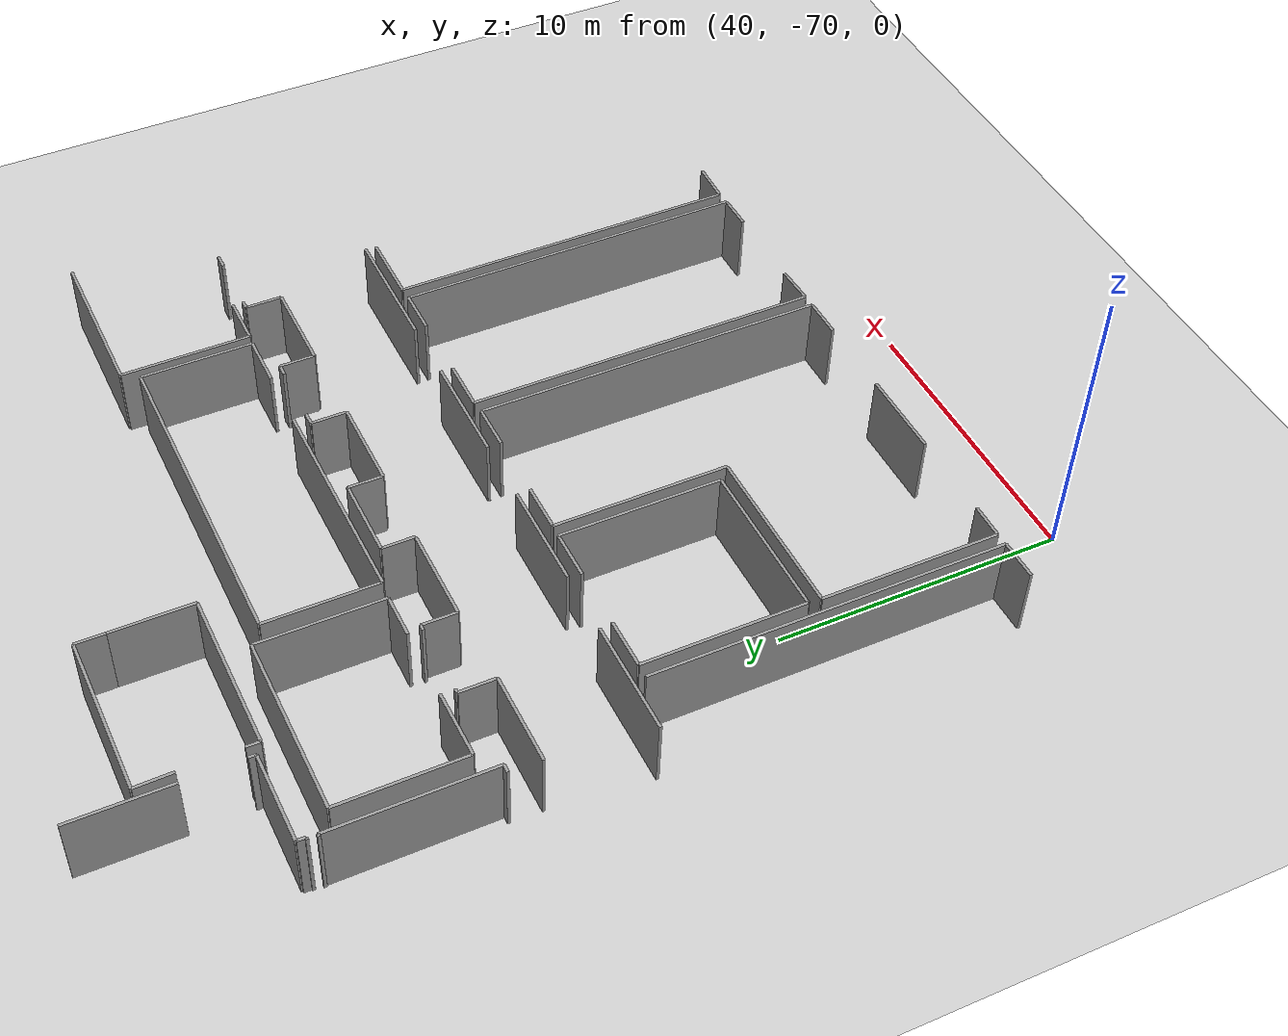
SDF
<sdf version="1.6">
 <world name="default">
  <model name="ground_plane">
   <static>1</static>
   <link name="link">
    <collision name="collision">
     <geometry><plane><normal>0 0 1</normal><size>100 100</size></plane></geometry>
     <surface><friction><ode><mu>100</mu><mu2>50</mu2></ode></friction></surface>
    </collision>
    <visual name="visual">
     <cast_shadows>0</cast_shadows>
     <geometry><plane><normal>0 0 1</normal><size>100 100</size></plane></geometry>
     <material>
      <script><uri>file://media/materials/scripts/gazebo.material</uri><name>Gazebo/Grey</name></script>
     </material>
    </visual>
   </link>
  </model>
  <model name="50036894">
   <static>1</static>
   <link name="Wall_306">
    <collision name="Wall_306_Collision">
     <geometry><box><size>3.41852164155 0.1 2.5</size></box></geometry>
     <pose>1.70926082077 0 1.25 0 0 0</pose>
    </collision>
    <visual name="Wall_306_Visual">
     <pose>1.70926082077 0 1.25 0 0 0</pose>
     <geometry><box><size>3.41852164155 0.1 2.5</size></box></geometry>
     <material>
      <script><uri>file://media/materials/scripts/gazebo.material</uri><name>Gazebo/Grey</name></script>
      <ambient>1 1 1 1</ambient>
     </material>
    </visual>
    <pose>163.628248451 -105.257245022 0 0 0 -1.57079632679</pose>
   </link>
   <link name="Wall_307">
    <collision name="Wall_307_Collision">
     <geometry><box><size>0.247766739154 0.1 2.5</size></box></geometry>
     <pose>0.123883369577 0 1.25 0 0 0</pose>
    </collision>
    <visual name="Wall_307_Visual">
     <pose>0.123883369577 0 1.25 0 0 0</pose>
     <geometry><box><size>0.247766739154 0.1 2.5</size></box></geometry>
     <material>
      <script><uri>file://media/materials/scripts/gazebo.material</uri><name>Gazebo/Grey</name></script>
      <ambient>1 1 1 1</ambient>
     </material>
    </visual>
    <pose>163.628248451 -110.709381281 0 0 0 -1.57079632679</pose>
   </link>
   <link name="Wall_308">
    <collision name="Wall_308_Collision">
     <geometry><box><size>3.16492211324 0.1 2.5</size></box></geometry>
     <pose>1.58246105662 0 1.25 0 0 0</pose>
    </collision>
    <visual name="Wall_308_Visual">
     <pose>1.58246105662 0 1.25 0 0 0</pose>
     <geometry><box><size>3.16492211324 0.1 2.5</size></box></geometry>
     <material>
      <script><uri>file://media/materials/scripts/gazebo.material</uri><name>Gazebo/Grey</name></script>
      <ambient>1 1 1 1</ambient>
     </material>
    </visual>
    <pose>163.628248451 -110.95714802 0 0 0 3.14159265359</pose>
   </link>
   <link name="Wall_309">
    <collision name="Wall_309_Collision">
     <geometry><box><size>0.298486644815 0.1 2.5</size></box></geometry>
     <pose>0.149243322407 0 1.25 0 0 0</pose>
    </collision>
    <visual name="Wall_309_Visual">
     <pose>0.149243322407 0 1.25 0 0 0</pose>
     <geometry><box><size>0.298486644815 0.1 2.5</size></box></geometry>
     <material>
      <script><uri>file://media/materials/scripts/gazebo.material</uri><name>Gazebo/Grey</name></script>
      <ambient>1 1 1 1</ambient>
     </material>
    </visual>
    <pose>160.463326338 -110.95714802 0 0 0 -1.57079632679</pose>
   </link>
   <link name="Wall_310">
    <collision name="Wall_310_Collision">
     <geometry><box><size>0.0887598349067 0.1 2.5</size></box></geometry>
     <pose>0.0443799174533 0 1.25 0 0 0</pose>
    </collision>
    <visual name="Wall_310_Visual">
     <pose>0.0443799174533 0 1.25 0 0 0</pose>
     <geometry><box><size>0.0887598349067 0.1 2.5</size></box></geometry>
     <material>
      <script><uri>file://media/materials/scripts/gazebo.material</uri><name>Gazebo/Grey</name></script>
      <ambient>1 1 1 1</ambient>
     </material>
    </visual>
    <pose>160.463326338 -111.255634665 0 0 0 3.14159265359</pose>
   </link>
   <link name="Wall_312">
    <collision name="Wall_312_Collision">
     <geometry><box><size>5.6248375378 0.1 2.5</size></box></geometry>
     <pose>2.8124187689 0 1.25 0 0 0</pose>
    </collision>
    <visual name="Wall_312_Visual">
     <pose>2.8124187689 0 1.25 0 0 0</pose>
     <geometry><box><size>5.6248375378 0.1 2.5</size></box></geometry>
     <material>
      <script><uri>file://media/materials/scripts/gazebo.material</uri><name>Gazebo/Grey</name></script>
      <ambient>1 1 1 1</ambient>
     </material>
    </visual>
    <pose>163.980751796 -107.425774588 0 0 0 0.0</pose>
   </link>
   <link name="Wall_313">
    <collision name="Wall_313_Collision">
     <geometry><box><size>0.996138947182 0.1 2.5</size></box></geometry>
     <pose>0.498069473591 0 1.25 0 0 0</pose>
    </collision>
    <visual name="Wall_313_Visual">
     <pose>0.498069473591 0 1.25 0 0 0</pose>
     <geometry><box><size>0.996138947182 0.1 2.5</size></box></geometry>
     <material>
      <script><uri>file://media/materials/scripts/gazebo.material</uri><name>Gazebo/Grey</name></script>
      <ambient>1 1 1 1</ambient>
     </material>
    </visual>
    <pose>169.605589334 -107.425774588 0 0 0 -1.57079632679</pose>
   </link>
   <link name="Wall_314">
    <collision name="Wall_314_Collision">
     <geometry><box><size>2.7989779939 0.1 2.5</size></box></geometry>
     <pose>1.39948899695 0 1.25 0 0 0</pose>
    </collision>
    <visual name="Wall_314_Visual">
     <pose>1.39948899695 0 1.25 0 0 0</pose>
     <geometry><box><size>2.7989779939 0.1 2.5</size></box></geometry>
     <material>
      <script><uri>file://media/materials/scripts/gazebo.material</uri><name>Gazebo/Grey</name></script>
      <ambient>1 1 1 1</ambient>
     </material>
    </visual>
    <pose>169.605589334 -108.421913535 0 0 0 -1.57079632679</pose>
   </link>
   <link name="Wall_315">
    <collision name="Wall_315_Collision">
     <geometry><box><size>5.59947758497 0.1 2.5</size></box></geometry>
     <pose>2.79973879249 0 1.25 0 0 0</pose>
    </collision>
    <visual name="Wall_315_Visual">
     <pose>2.79973879249 0 1.25 0 0 0</pose>
     <geometry><box><size>5.59947758497 0.1 2.5</size></box></geometry>
     <material>
      <script><uri>file://media/materials/scripts/gazebo.material</uri><name>Gazebo/Grey</name></script>
      <ambient>1 1 1 1</ambient>
     </material>
    </visual>
    <pose>169.605589334 -111.220891529 0 0 0 3.14159265359</pose>
   </link>
   <link name="Wall_316">
    <collision name="Wall_316_Collision">
     <geometry><box><size>0.466369532553 0.1 2.5</size></box></geometry>
     <pose>0.233184766276 0 1.25 0 0 0</pose>
    </collision>
    <visual name="Wall_316_Visual">
     <pose>0.233184766276 0 1.25 0 0 0</pose>
     <geometry><box><size>0.466369532553 0.1 2.5</size></box></geometry>
     <material>
      <script><uri>file://media/materials/scripts/gazebo.material</uri><name>Gazebo/Grey</name></script>
      <ambient>1 1 1 1</ambient>
     </material>
    </visual>
    <pose>164.006111749 -111.220891529 0 0 0 1.57079632679</pose>
   </link>
   <link name="Wall_317">
    <collision name="Wall_317_Collision">
     <geometry><box><size>1.28574613214 0.1 2.5</size></box></geometry>
     <pose>0.642873066068 0 1.25 0 0 0</pose>
    </collision>
    <visual name="Wall_317_Visual">
     <pose>0.642873066068 0 1.25 0 0 0</pose>
     <geometry><box><size>1.28574613214 0.1 2.5</size></box></geometry>
     <material>
      <script><uri>file://media/materials/scripts/gazebo.material</uri><name>Gazebo/Grey</name></script>
      <ambient>1 1 1 1</ambient>
     </material>
    </visual>
    <pose>164.006111749 -108.711270597 0 0 0 1.5905215251</pose>
   </link>
   <link name="Wall_323">
    <collision name="Wall_323_Collision">
     <geometry><box><size>0.0912958301898 0.1 2.5</size></box></geometry>
     <pose>0.0456479150949 0 1.25 0 0 0</pose>
    </collision>
    <visual name="Wall_323_Visual">
     <pose>0.0456479150949 0 1.25 0 0 0</pose>
     <geometry><box><size>0.0912958301898 0.1 2.5</size></box></geometry>
     <material>
      <script><uri>file://media/materials/scripts/gazebo.material</uri><name>Gazebo/Grey</name></script>
      <ambient>1 1 1 1</ambient>
     </material>
    </visual>
    <pose>160.336526574 -111.587089248 0 0 0 0.0</pose>
   </link>
   <link name="Wall_324">
    <collision name="Wall_324_Collision">
     <geometry><box><size>5.50894255337 0.1 2.5</size></box></geometry>
     <pose>2.75447127668 0 1.25 0 0 0</pose>
    </collision>
    <visual name="Wall_324_Visual">
     <pose>2.75447127668 0 1.25 0 0 0</pose>
     <geometry><box><size>5.50894255337 0.1 2.5</size></box></geometry>
     <material>
      <script><uri>file://media/materials/scripts/gazebo.material</uri><name>Gazebo/Grey</name></script>
      <ambient>1 1 1 1</ambient>
     </material>
    </visual>
    <pose>160.427822404 -111.587089248 0 0 0 -1.57079632679</pose>
   </link>
   <link name="Wall_325">
    <collision name="Wall_325_Collision">
     <geometry><box><size>0.281495476418 0.1 2.5</size></box></geometry>
     <pose>0.140747738209 0 1.25 0 0 0</pose>
    </collision>
    <visual name="Wall_325_Visual">
     <pose>0.140747738209 0 1.25 0 0 0</pose>
     <geometry><box><size>0.281495476418 0.1 2.5</size></box></geometry>
     <material>
      <script><uri>file://media/materials/scripts/gazebo.material</uri><name>Gazebo/Grey</name></script>
      <ambient>1 1 1 1</ambient>
     </material>
    </visual>
    <pose>160.427822404 -117.096031801 0 0 0 3.14159265359</pose>
   </link>
   <link name="Wall_375">
    <collision name="Wall_375_Collision">
     <geometry><box><size>3.19028206608 0.1 2.5</size></box></geometry>
     <pose>1.59514103304 0 1.25 0 0 0</pose>
    </collision>
    <visual name="Wall_375_Visual">
     <pose>1.59514103304 0 1.25 0 0 0</pose>
     <geometry><box><size>3.19028206608 0.1 2.5</size></box></geometry>
     <material>
      <script><uri>file://media/materials/scripts/gazebo.material</uri><name>Gazebo/Grey</name></script>
      <ambient>1 1 1 1</ambient>
     </material>
    </visual>
    <pose>160.100679013 -118.1720546 0 0 0 0.0</pose>
   </link>
   <link name="Wall_376">
    <collision name="Wall_376_Collision">
     <geometry><box><size>1.26165765332 0.1 2.5</size></box></geometry>
     <pose>0.630828826658 0 1.25 0 0 0</pose>
    </collision>
    <visual name="Wall_376_Visual">
     <pose>0.630828826658 0 1.25 0 0 0</pose>
     <geometry><box><size>1.26165765332 0.1 2.5</size></box></geometry>
     <material>
      <script><uri>file://media/materials/scripts/gazebo.material</uri><name>Gazebo/Grey</name></script>
      <ambient>1 1 1 1</ambient>
     </material>
    </visual>
    <pose>163.290961079 -118.1720546 0 0 0 1.57079632679</pose>
   </link>
   <link name="Wall_377">
    <collision name="Wall_377_Collision">
     <geometry><box><size>0.144551731134 0.1 2.5</size></box></geometry>
     <pose>0.0722758655669 0 1.25 0 0 0</pose>
    </collision>
    <visual name="Wall_377_Visual">
     <pose>0.0722758655669 0 1.25 0 0 0</pose>
     <geometry><box><size>0.144551731134 0.1 2.5</size></box></geometry>
     <material>
      <script><uri>file://media/materials/scripts/gazebo.material</uri><name>Gazebo/Grey</name></script>
      <ambient>1 1 1 1</ambient>
     </material>
    </visual>
    <pose>163.290961079 -116.910396947 0 0 0 0.0</pose>
   </link>
   <link name="Wall_378">
    <collision name="Wall_378_Collision">
     <geometry><box><size>0.200343627361 0.1 2.5</size></box></geometry>
     <pose>0.10017181368 0 1.25 0 0 0</pose>
    </collision>
    <visual name="Wall_378_Visual">
     <pose>0.10017181368 0 1.25 0 0 0</pose>
     <geometry><box><size>0.200343627361 0.1 2.5</size></box></geometry>
     <material>
      <script><uri>file://media/materials/scripts/gazebo.material</uri><name>Gazebo/Grey</name></script>
      <ambient>1 1 1 1</ambient>
     </material>
    </visual>
    <pose>165.839636338 -116.910396947 0 0 0 0.0</pose>
   </link>
   <link name="Wall_379">
    <collision name="Wall_379_Collision">
     <geometry><box><size>1.1952145769 0.1 2.5</size></box></geometry>
     <pose>0.59760728845 0 1.25 0 0 0</pose>
    </collision>
    <visual name="Wall_379_Visual">
     <pose>0.59760728845 0 1.25 0 0 0</pose>
     <geometry><box><size>1.1952145769 0.1 2.5</size></box></geometry>
     <material>
      <script><uri>file://media/materials/scripts/gazebo.material</uri><name>Gazebo/Grey</name></script>
      <ambient>1 1 1 1</ambient>
     </material>
    </visual>
    <pose>166.039979966 -116.910396947 0 0 0 -1.57079632679</pose>
   </link>
   <link name="Wall_380">
    <collision name="Wall_380_Collision">
     <geometry><box><size>3.29425787268 0.1 2.5</size></box></geometry>
     <pose>1.64712893634 0 1.25 0 0 0</pose>
    </collision>
    <visual name="Wall_380_Visual">
     <pose>1.64712893634 0 1.25 0 0 0</pose>
     <geometry><box><size>3.29425787268 0.1 2.5</size></box></geometry>
     <material>
      <script><uri>file://media/materials/scripts/gazebo.material</uri><name>Gazebo/Grey</name></script>
      <ambient>1 1 1 1</ambient>
     </material>
    </visual>
    <pose>166.039979966 -118.105611524 0 0 0 0.0</pose>
   </link>
   <link name="Wall_381">
    <collision name="Wall_381_Collision">
     <geometry><box><size>1.13181469482 0.1 2.5</size></box></geometry>
     <pose>0.565907347412 0 1.25 0 0 0</pose>
    </collision>
    <visual name="Wall_381_Visual">
     <pose>0.565907347412 0 1.25 0 0 0</pose>
     <geometry><box><size>1.13181469482 0.1 2.5</size></box></geometry>
     <material>
      <script><uri>file://media/materials/scripts/gazebo.material</uri><name>Gazebo/Grey</name></script>
      <ambient>1 1 1 1</ambient>
     </material>
    </visual>
    <pose>169.334237838 -118.105611524 0 0 0 1.57079632679</pose>
   </link>
   <link name="Wall_382">
    <collision name="Wall_382_Collision">
     <geometry><box><size>2.7819868255 0.1 2.5</size></box></geometry>
     <pose>1.39099341275 0 1.25 0 0 0</pose>
    </collision>
    <visual name="Wall_382_Visual">
     <pose>1.39099341275 0 1.25 0 0 0</pose>
     <geometry><box><size>2.7819868255 0.1 2.5</size></box></geometry>
     <material>
      <script><uri>file://media/materials/scripts/gazebo.material</uri><name>Gazebo/Grey</name></script>
      <ambient>1 1 1 1</ambient>
     </material>
    </visual>
    <pose>169.334237838 -116.973796829 0 0 0 0.0</pose>
   </link>
   <link name="Wall_383">
    <collision name="Wall_383_Collision">
     <geometry><box><size>1.1799986052 0.1 2.5</size></box></geometry>
     <pose>0.589999302601 0 1.25 0 0 0</pose>
    </collision>
    <visual name="Wall_383_Visual">
     <pose>0.589999302601 0 1.25 0 0 0</pose>
     <geometry><box><size>1.1799986052 0.1 2.5</size></box></geometry>
     <material>
      <script><uri>file://media/materials/scripts/gazebo.material</uri><name>Gazebo/Grey</name></script>
      <ambient>1 1 1 1</ambient>
     </material>
    </visual>
    <pose>172.116224664 -116.973796829 0 0 0 -1.57079632679</pose>
   </link>
   <link name="Wall_384">
    <collision name="Wall_384_Collision">
     <geometry><box><size>3.13449016985 0.1 2.5</size></box></geometry>
     <pose>1.56724508492 0 1.25 0 0 0</pose>
    </collision>
    <visual name="Wall_384_Visual">
     <pose>1.56724508492 0 1.25 0 0 0</pose>
     <geometry><box><size>3.13449016985 0.1 2.5</size></box></geometry>
     <material>
      <script><uri>file://media/materials/scripts/gazebo.material</uri><name>Gazebo/Grey</name></script>
      <ambient>1 1 1 1</ambient>
     </material>
    </visual>
    <pose>172.116224664 -118.153795434 0 0 0 0.0</pose>
   </link>
   <link name="Wall_385">
    <collision name="Wall_385_Collision">
     <geometry><box><size>1.22691451794 0.1 2.5</size></box></geometry>
     <pose>0.61345725897 0 1.25 0 0 0</pose>
    </collision>
    <visual name="Wall_385_Visual">
     <pose>0.61345725897 0 1.25 0 0 0</pose>
     <geometry><box><size>1.22691451794 0.1 2.5</size></box></geometry>
     <material>
      <script><uri>file://media/materials/scripts/gazebo.material</uri><name>Gazebo/Grey</name></script>
      <ambient>1 1 1 1</ambient>
     </material>
    </visual>
    <pose>175.250714834 -118.153795434 0 0 0 1.57079632679</pose>
   </link>
   <link name="Wall_386">
    <collision name="Wall_386_Collision">
     <geometry><box><size>0.4488711651 0.1 2.5</size></box></geometry>
     <pose>0.22443558255 0 1.25 0 0 0</pose>
    </collision>
    <visual name="Wall_386_Visual">
     <pose>0.22443558255 0 1.25 0 0 0</pose>
     <geometry><box><size>0.4488711651 0.1 2.5</size></box></geometry>
     <material>
      <script><uri>file://media/materials/scripts/gazebo.material</uri><name>Gazebo/Grey</name></script>
      <ambient>1 1 1 1</ambient>
     </material>
    </visual>
    <pose>175.250714834 -116.926880916 0 0 0 0.0</pose>
   </link>
   <link name="Wall_387">
    <collision name="Wall_387_Collision">
     <geometry><box><size>0.410831235854 0.1 2.5</size></box></geometry>
     <pose>0.205415617927 0 1.25 0 0 0</pose>
    </collision>
    <visual name="Wall_387_Visual">
     <pose>0.205415617927 0 1.25 0 0 0</pose>
     <geometry><box><size>0.410831235854 0.1 2.5</size></box></geometry>
     <material>
      <script><uri>file://media/materials/scripts/gazebo.material</uri><name>Gazebo/Grey</name></script>
      <ambient>1 1 1 1</ambient>
     </material>
    </visual>
    <pose>177.748670187 -116.926880916 0 0 0 0.0</pose>
   </link>
   <link name="Wall_388">
    <collision name="Wall_388_Collision">
     <geometry><box><size>1.19952576888 0.1 2.5</size></box></geometry>
     <pose>0.599762884441 0 1.25 0 0 0</pose>
    </collision>
    <visual name="Wall_388_Visual">
     <pose>0.599762884441 0 1.25 0 0 0</pose>
     <geometry><box><size>1.19952576888 0.1 2.5</size></box></geometry>
     <material>
      <script><uri>file://media/materials/scripts/gazebo.material</uri><name>Gazebo/Grey</name></script>
      <ambient>1 1 1 1</ambient>
     </material>
    </visual>
    <pose>178.159501423 -116.926880916 0 0 0 -1.57079632679</pose>
   </link>
   <link name="Wall_389">
    <collision name="Wall_389_Collision">
     <geometry><box><size>3.18267408023 0.1 2.5</size></box></geometry>
     <pose>1.59133704011 0 1.25 0 0 0</pose>
    </collision>
    <visual name="Wall_389_Visual">
     <pose>1.59133704011 0 1.25 0 0 0</pose>
     <geometry><box><size>3.18267408023 0.1 2.5</size></box></geometry>
     <material>
      <script><uri>file://media/materials/scripts/gazebo.material</uri><name>Gazebo/Grey</name></script>
      <ambient>1 1 1 1</ambient>
     </material>
    </visual>
    <pose>178.159501423 -118.126406685 0 0 0 0.0</pose>
   </link>
   <link name="Wall_390">
    <collision name="Wall_390_Collision">
     <geometry><box><size>1.25836085945 0.1 2.5</size></box></geometry>
     <pose>0.629180429724 0 1.25 0 0 0</pose>
    </collision>
    <visual name="Wall_390_Visual">
     <pose>0.629180429724 0 1.25 0 0 0</pose>
     <geometry><box><size>1.25836085945 0.1 2.5</size></box></geometry>
     <material>
      <script><uri>file://media/materials/scripts/gazebo.material</uri><name>Gazebo/Grey</name></script>
      <ambient>1 1 1 1</ambient>
     </material>
    </visual>
    <pose>181.342175504 -118.126406685 0 0 0 1.57079632679</pose>
   </link>
   <link name="Wall_391">
    <collision name="Wall_391_Collision">
     <geometry><box><size>0.314463415098 0.1 2.5</size></box></geometry>
     <pose>0.157231707549 0 1.25 0 0 0</pose>
    </collision>
    <visual name="Wall_391_Visual">
     <pose>0.157231707549 0 1.25 0 0 0</pose>
     <geometry><box><size>0.314463415098 0.1 2.5</size></box></geometry>
     <material>
      <script><uri>file://media/materials/scripts/gazebo.material</uri><name>Gazebo/Grey</name></script>
      <ambient>1 1 1 1</ambient>
     </material>
    </visual>
    <pose>181.342175504 -116.868045825 0 0 0 0.0</pose>
   </link>
   <link name="Wall_392">
    <collision name="Wall_392_Collision">
     <geometry><box><size>0.504663061327 0.1 2.5</size></box></geometry>
     <pose>0.252331530663 0 1.25 0 0 0</pose>
    </collision>
    <visual name="Wall_392_Visual">
     <pose>0.252331530663 0 1.25 0 0 0</pose>
     <geometry><box><size>0.504663061327 0.1 2.5</size></box></geometry>
     <material>
      <script><uri>file://media/materials/scripts/gazebo.material</uri><name>Gazebo/Grey</name></script>
      <ambient>1 1 1 1</ambient>
     </material>
    </visual>
    <pose>183.700651117 -116.868045825 0 0 0 0.0</pose>
   </link>
   <link name="Wall_404">
    <collision name="Wall_404_Collision">
     <geometry><box><size>4.54703954251 0.1 2.5</size></box></geometry>
     <pose>2.27351977125 0 1.25 0 0 0</pose>
    </collision>
    <visual name="Wall_404_Visual">
     <pose>2.27351977125 0 1.25 0 0 0</pose>
     <geometry><box><size>4.54703954251 0.1 2.5</size></box></geometry>
     <material>
      <script><uri>file://media/materials/scripts/gazebo.material</uri><name>Gazebo/Grey</name></script>
      <ambient>1 1 1 1</ambient>
     </material>
    </visual>
    <pose>182.455477433 -121.637492154 0 0 0 3.14159265359</pose>
   </link>
   <link name="Wall_405">
    <collision name="Wall_405_Collision">
     <geometry><box><size>3.86232081608 0.1 2.5</size></box></geometry>
     <pose>1.93116040804 0 1.25 0 0 0</pose>
    </collision>
    <visual name="Wall_405_Visual">
     <pose>1.93116040804 0 1.25 0 0 0</pose>
     <geometry><box><size>3.86232081608 0.1 2.5</size></box></geometry>
     <material>
      <script><uri>file://media/materials/scripts/gazebo.material</uri><name>Gazebo/Grey</name></script>
      <ambient>1 1 1 1</ambient>
     </material>
    </visual>
    <pose>175.750305904 -121.637492154 0 0 0 3.14159265359</pose>
   </link>
   <link name="Wall_406">
    <collision name="Wall_406_Collision">
     <geometry><box><size>3.73552105193 0.1 2.5</size></box></geometry>
     <pose>1.86776052597 0 1.25 0 0 0</pose>
    </collision>
    <visual name="Wall_406_Visual">
     <pose>1.86776052597 0 1.25 0 0 0</pose>
     <geometry><box><size>3.73552105193 0.1 2.5</size></box></geometry>
     <material>
      <script><uri>file://media/materials/scripts/gazebo.material</uri><name>Gazebo/Grey</name></script>
      <ambient>1 1 1 1</ambient>
     </material>
    </visual>
    <pose>169.663917225 -121.637492154 0 0 0 3.14159265359</pose>
   </link>
   <link name="Wall_407">
    <collision name="Wall_407_Collision">
     <geometry><box><size>3.98658458495 0.1 2.5</size></box></geometry>
     <pose>1.99329229248 0 1.25 0 0 0</pose>
    </collision>
    <visual name="Wall_407_Visual">
     <pose>1.99329229248 0 1.25 0 0 0</pose>
     <geometry><box><size>3.98658458495 0.1 2.5</size></box></geometry>
     <material>
      <script><uri>file://media/materials/scripts/gazebo.material</uri><name>Gazebo/Grey</name></script>
      <ambient>1 1 1 1</ambient>
     </material>
    </visual>
    <pose>163.739832244 -121.637492154 0 0 0 3.14159265359</pose>
   </link>
   <link name="Wall_413">
    <collision name="Wall_413_Collision">
     <geometry><box><size>12.2333876459 0.1 2.5</size></box></geometry>
     <pose>6.11669382295 0 1.25 0 0 0</pose>
    </collision>
    <visual name="Wall_413_Visual">
     <pose>6.11669382295 0 1.25 0 0 0</pose>
     <geometry><box><size>12.2333876459 0.1 2.5</size></box></geometry>
     <material>
      <script><uri>file://media/materials/scripts/gazebo.material</uri><name>Gazebo/Grey</name></script>
      <ambient>1 1 1 1</ambient>
     </material>
    </visual>
    <pose>161.563948291 -122.06430016 0 0 0 -1.57079632679</pose>
   </link>
   <link name="Wall_414">
    <collision name="Wall_414_Collision">
     <geometry><box><size>1.38718941983 0.1 2.5</size></box></geometry>
     <pose>0.693594709914 0 1.25 0 0 0</pose>
    </collision>
    <visual name="Wall_414_Visual">
     <pose>0.693594709914 0 1.25 0 0 0</pose>
     <geometry><box><size>1.38718941983 0.1 2.5</size></box></geometry>
     <material>
      <script><uri>file://media/materials/scripts/gazebo.material</uri><name>Gazebo/Grey</name></script>
      <ambient>1 1 1 1</ambient>
     </material>
    </visual>
    <pose>161.563948291 -134.297687806 0 0 0 3.14159265359</pose>
   </link>
   <link name="Wall_416">
    <collision name="Wall_416_Collision">
     <geometry><box><size>5.61114316327 0.1 2.5</size></box></geometry>
     <pose>2.80557158164 0 1.25 0 0 0</pose>
    </collision>
    <visual name="Wall_416_Visual">
     <pose>2.80557158164 0 1.25 0 0 0</pose>
     <geometry><box><size>5.61114316327 0.1 2.5</size></box></geometry>
     <material>
      <script><uri>file://media/materials/scripts/gazebo.material</uri><name>Gazebo/Grey</name></script>
      <ambient>1 1 1 1</ambient>
     </material>
    </visual>
    <pose>162.033107418 -127.686348103 0 0 0 1.57079632679</pose>
   </link>
   <link name="Wall_417">
    <collision name="Wall_417_Collision">
     <geometry><box><size>1.74476475474 0.1 2.5</size></box></geometry>
     <pose>0.872382377369 0 1.25 0 0 0</pose>
    </collision>
    <visual name="Wall_417_Visual">
     <pose>0.872382377369 0 1.25 0 0 0</pose>
     <geometry><box><size>1.74476475474 0.1 2.5</size></box></geometry>
     <material>
      <script><uri>file://media/materials/scripts/gazebo.material</uri><name>Gazebo/Grey</name></script>
      <ambient>1 1 1 1</ambient>
     </material>
    </visual>
    <pose>162.033107418 -122.07520494 0 0 0 0.0</pose>
   </link>
   <link name="Wall_418">
    <collision name="Wall_418_Collision">
     <geometry><box><size>1.70672482549 0.1 2.5</size></box></geometry>
     <pose>0.853362412746 0 1.25 0 0 0</pose>
    </collision>
    <visual name="Wall_418_Visual">
     <pose>0.853362412746 0 1.25 0 0 0</pose>
     <geometry><box><size>1.70672482549 0.1 2.5</size></box></geometry>
     <material>
      <script><uri>file://media/materials/scripts/gazebo.material</uri><name>Gazebo/Grey</name></script>
      <ambient>1 1 1 1</ambient>
     </material>
    </visual>
    <pose>165.849780319 -122.07520494 0 0 0 0.0</pose>
   </link>
   <link name="Wall_419">
    <collision name="Wall_419_Collision">
     <geometry><box><size>5.60860716799 0.1 2.5</size></box></geometry>
     <pose>2.804303584 0 1.25 0 0 0</pose>
    </collision>
    <visual name="Wall_419_Visual">
     <pose>2.804303584 0 1.25 0 0 0</pose>
     <geometry><box><size>5.60860716799 0.1 2.5</size></box></geometry>
     <material>
      <script><uri>file://media/materials/scripts/gazebo.material</uri><name>Gazebo/Grey</name></script>
      <ambient>1 1 1 1</ambient>
     </material>
    </visual>
    <pose>167.556505145 -122.07520494 0 0 0 -1.57079632679</pose>
   </link>
   <link name="Wall_420">
    <collision name="Wall_420_Collision">
     <geometry><box><size>5.52339830866 0.1 2.5</size></box></geometry>
     <pose>2.76169915433 0 1.25 0 0 0</pose>
    </collision>
    <visual name="Wall_420_Visual">
     <pose>2.76169915433 0 1.25 0 0 0</pose>
     <geometry><box><size>5.52339830866 0.1 2.5</size></box></geometry>
     <material>
      <script><uri>file://media/materials/scripts/gazebo.material</uri><name>Gazebo/Grey</name></script>
      <ambient>1 1 1 1</ambient>
     </material>
    </visual>
    <pose>167.556505145 -127.683812108 0 0 0 -3.1411335168</pose>
   </link>
   <link name="Wall_421">
    <collision name="Wall_421_Collision">
     <geometry><box><size>6.15359255432 0.1 2.5</size></box></geometry>
     <pose>3.07679627716 0 1.25 0 0 0</pose>
    </collision>
    <visual name="Wall_421_Visual">
     <pose>3.07679627716 0 1.25 0 0 0</pose>
     <geometry><box><size>6.15359255432 0.1 2.5</size></box></geometry>
     <material>
      <script><uri>file://media/materials/scripts/gazebo.material</uri><name>Gazebo/Grey</name></script>
      <ambient>1 1 1 1</ambient>
     </material>
    </visual>
    <pose>161.995067489 -134.280950237 0 0 0 1.57079632679</pose>
   </link>
   <link name="Wall_422">
    <collision name="Wall_422_Collision">
     <geometry><box><size>5.99255685384 0.1 2.5</size></box></geometry>
     <pose>2.99627842692 0 1.25 0 0 0</pose>
    </collision>
    <visual name="Wall_422_Visual">
     <pose>2.99627842692 0 1.25 0 0 0</pose>
     <geometry><box><size>5.99255685384 0.1 2.5</size></box></geometry>
     <material>
      <script><uri>file://media/materials/scripts/gazebo.material</uri><name>Gazebo/Grey</name></script>
      <ambient>1 1 1 1</ambient>
     </material>
    </visual>
    <pose>161.995067489 -128.127357683 0 0 0 0.0</pose>
   </link>
   <link name="Wall_423">
    <collision name="Wall_423_Collision">
     <geometry><box><size>6.03186478073 0.1 2.5</size></box></geometry>
     <pose>3.01593239037 0 1.25 0 0 0</pose>
    </collision>
    <visual name="Wall_423_Visual">
     <pose>3.01593239037 0 1.25 0 0 0</pose>
     <geometry><box><size>6.03186478073 0.1 2.5</size></box></geometry>
     <material>
      <script><uri>file://media/materials/scripts/gazebo.material</uri><name>Gazebo/Grey</name></script>
      <ambient>1 1 1 1</ambient>
     </material>
    </visual>
    <pose>167.987624343 -128.127357683 0 0 0 1.57079632679</pose>
   </link>
   <link name="Wall_424">
    <collision name="Wall_424_Collision">
     <geometry><box><size>1.68643686323 0.1 2.5</size></box></geometry>
     <pose>0.843218431614 0 1.25 0 0 0</pose>
    </collision>
    <visual name="Wall_424_Visual">
     <pose>0.843218431614 0 1.25 0 0 0</pose>
     <geometry><box><size>1.68643686323 0.1 2.5</size></box></geometry>
     <material>
      <script><uri>file://media/materials/scripts/gazebo.material</uri><name>Gazebo/Grey</name></script>
      <ambient>1 1 1 1</ambient>
     </material>
    </visual>
    <pose>167.987624343 -122.095492902 0 0 0 0.0</pose>
   </link>
   <link name="Wall_425">
    <collision name="Wall_425_Collision">
     <geometry><box><size>1.57485307077 0.1 2.5</size></box></geometry>
     <pose>0.787426535387 0 1.25 0 0 0</pose>
    </collision>
    <visual name="Wall_425_Visual">
     <pose>0.787426535387 0 1.25 0 0 0</pose>
     <geometry><box><size>1.57485307077 0.1 2.5</size></box></geometry>
     <material>
      <script><uri>file://media/materials/scripts/gazebo.material</uri><name>Gazebo/Grey</name></script>
      <ambient>1 1 1 1</ambient>
     </material>
    </visual>
    <pose>171.900665065 -122.095492902 0 0 0 0.0</pose>
   </link>
   <link name="Wall_426">
    <collision name="Wall_426_Collision">
     <geometry><box><size>12.202702103 0.1 2.5</size></box></geometry>
     <pose>6.10135105149 0 1.25 0 0 0</pose>
    </collision>
    <visual name="Wall_426_Visual">
     <pose>6.10135105149 0 1.25 0 0 0</pose>
     <geometry><box><size>12.202702103 0.1 2.5</size></box></geometry>
     <material>
      <script><uri>file://media/materials/scripts/gazebo.material</uri><name>Gazebo/Grey</name></script>
      <ambient>1 1 1 1</ambient>
     </material>
    </visual>
    <pose>173.475518136 -122.095492902 0 0 0 -1.57079632679</pose>
   </link>
   <link name="Wall_427">
    <collision name="Wall_427_Collision">
     <geometry><box><size>1.39986939624 0.1 2.5</size></box></geometry>
     <pose>0.699934698121 0 1.25 0 0 0</pose>
    </collision>
    <visual name="Wall_427_Visual">
     <pose>0.699934698121 0 1.25 0 0 0</pose>
     <geometry><box><size>1.39986939624 0.1 2.5</size></box></geometry>
     <material>
      <script><uri>file://media/materials/scripts/gazebo.material</uri><name>Gazebo/Grey</name></script>
      <ambient>1 1 1 1</ambient>
     </material>
    </visual>
    <pose>173.475518136 -134.298195005 0 0 0 3.14159265359</pose>
   </link>
   <link name="Wall_428">
    <collision name="Wall_428_Collision">
     <geometry><box><size>3.03812234909 0.1 2.5</size></box></geometry>
     <pose>1.51906117455 0 1.25 0 0 0</pose>
    </collision>
    <visual name="Wall_428_Visual">
     <pose>1.51906117455 0 1.25 0 0 0</pose>
     <geometry><box><size>3.03812234909 0.1 2.5</size></box></geometry>
     <material>
      <script><uri>file://media/materials/scripts/gazebo.material</uri><name>Gazebo/Grey</name></script>
      <ambient>1 1 1 1</ambient>
     </material>
    </visual>
    <pose>169.25815798 -134.298195005 0 0 0 3.14159265359</pose>
   </link>
   <link name="Wall_429">
    <collision name="Wall_429_Collision">
     <geometry><box><size>1.19964972064 0.1 2.5</size></box></geometry>
     <pose>0.59982486032 0 1.25 0 0 0</pose>
    </collision>
    <visual name="Wall_429_Visual">
     <pose>0.59982486032 0 1.25 0 0 0</pose>
     <geometry><box><size>1.19964972064 0.1 2.5</size></box></geometry>
     <material>
      <script><uri>file://media/materials/scripts/gazebo.material</uri><name>Gazebo/Grey</name></script>
      <ambient>1 1 1 1</ambient>
     </material>
    </visual>
    <pose>163.194593258 -134.298195005 0 0 0 3.12721732254</pose>
   </link>
   <link name="Wall_430">
    <collision name="Wall_430_Collision">
     <geometry><box><size>12.2458140228 0.1 2.5</size></box></geometry>
     <pose>6.12290701139 0 1.25 0 0 0</pose>
    </collision>
    <visual name="Wall_430_Visual">
     <pose>6.12290701139 0 1.25 0 0 0</pose>
     <geometry><box><size>12.2458140228 0.1 2.5</size></box></geometry>
     <material>
      <script><uri>file://media/materials/scripts/gazebo.material</uri><name>Gazebo/Grey</name></script>
      <ambient>1 1 1 1</ambient>
     </material>
    </visual>
    <pose>173.926925296 -134.28475423 0 0 0 1.57079632679</pose>
   </link>
   <link name="Wall_431">
    <collision name="Wall_431_Collision">
     <geometry><box><size>1.7802686887 0.1 2.5</size></box></geometry>
     <pose>0.89013434435 0 1.25 0 0 0</pose>
    </collision>
    <visual name="Wall_431_Visual">
     <pose>0.89013434435 0 1.25 0 0 0</pose>
     <geometry><box><size>1.7802686887 0.1 2.5</size></box></geometry>
     <material>
      <script><uri>file://media/materials/scripts/gazebo.material</uri><name>Gazebo/Grey</name></script>
      <ambient>1 1 1 1</ambient>
     </material>
    </visual>
    <pose>173.926925296 -122.038940208 0 0 0 0.0</pose>
   </link>
   <link name="Wall_432">
    <collision name="Wall_432_Collision">
     <geometry><box><size>1.57738906606 0.1 2.5</size></box></geometry>
     <pose>0.788694533028 0 1.25 0 0 0</pose>
    </collision>
    <visual name="Wall_432_Visual">
     <pose>0.788694533028 0 1.25 0 0 0</pose>
     <geometry><box><size>1.57738906606 0.1 2.5</size></box></geometry>
     <material>
      <script><uri>file://media/materials/scripts/gazebo.material</uri><name>Gazebo/Grey</name></script>
      <ambient>1 1 1 1</ambient>
     </material>
    </visual>
    <pose>177.938869834 -122.038940208 0 0 0 0.0</pose>
   </link>
   <link name="Wall_433">
    <collision name="Wall_433_Collision">
     <geometry><box><size>12.1933189204 0.1 2.5</size></box></geometry>
     <pose>6.09665946021 0 1.25 0 0 0</pose>
    </collision>
    <visual name="Wall_433_Visual">
     <pose>6.09665946021 0 1.25 0 0 0</pose>
     <geometry><box><size>12.1933189204 0.1 2.5</size></box></geometry>
     <material>
      <script><uri>file://media/materials/scripts/gazebo.material</uri><name>Gazebo/Grey</name></script>
      <ambient>1 1 1 1</ambient>
     </material>
    </visual>
    <pose>179.5162589 -122.038940208 0 0 0 -1.57079632679</pose>
   </link>
   <link name="Wall_434">
    <collision name="Wall_434_Collision">
     <geometry><box><size>1.22488572171 0.1 2.5</size></box></geometry>
     <pose>0.612442860856 0 1.25 0 0 0</pose>
    </collision>
    <visual name="Wall_434_Visual">
     <pose>0.612442860856 0 1.25 0 0 0</pose>
     <geometry><box><size>1.22488572171 0.1 2.5</size></box></geometry>
     <material>
      <script><uri>file://media/materials/scripts/gazebo.material</uri><name>Gazebo/Grey</name></script>
      <ambient>1 1 1 1</ambient>
     </material>
    </visual>
    <pose>179.5162589 -134.232259128 0 0 0 3.14159265359</pose>
   </link>
   <link name="Wall_435">
    <collision name="Wall_435_Collision">
     <geometry><box><size>1.34003413767 0.1 2.5</size></box></geometry>
     <pose>0.670017068833 0 1.25 0 0 0</pose>
    </collision>
    <visual name="Wall_435_Visual">
     <pose>0.670017068833 0 1.25 0 0 0</pose>
     <geometry><box><size>1.34003413767 0.1 2.5</size></box></geometry>
     <material>
      <script><uri>file://media/materials/scripts/gazebo.material</uri><name>Gazebo/Grey</name></script>
      <ambient>1 1 1 1</ambient>
     </material>
    </visual>
    <pose>175.265930805 -134.232259128 0 0 0 -3.10240817538</pose>
   </link>
   <link name="Wall_436">
    <collision name="Wall_436_Collision">
     <geometry><box><size>12.189261328 0.1 2.5</size></box></geometry>
     <pose>6.09463066399 0 1.25 0 0 0</pose>
    </collision>
    <visual name="Wall_436_Visual">
     <pose>6.09463066399 0 1.25 0 0 0</pose>
     <geometry><box><size>12.189261328 0.1 2.5</size></box></geometry>
     <material>
      <script><uri>file://media/materials/scripts/gazebo.material</uri><name>Gazebo/Grey</name></script>
      <ambient>1 1 1 1</ambient>
     </material>
    </visual>
    <pose>179.970202055 -134.197769592 0 0 0 1.57079632679</pose>
   </link>
   <link name="Wall_437">
    <collision name="Wall_437_Collision">
     <geometry><box><size>2.46752341041 0.1 2.5</size></box></geometry>
     <pose>1.2337617052 0 1.25 0 0 0</pose>
    </collision>
    <visual name="Wall_437_Visual">
     <pose>1.2337617052 0 1.25 0 0 0</pose>
     <geometry><box><size>2.46752341041 0.1 2.5</size></box></geometry>
     <material>
      <script><uri>file://media/materials/scripts/gazebo.material</uri><name>Gazebo/Grey</name></script>
      <ambient>1 1 1 1</ambient>
     </material>
    </visual>
    <pose>179.970202055 -122.008508264 0 0 0 0.0</pose>
   </link>
   <link name="Wall_441">
    <collision name="Wall_441_Collision">
     <geometry><box><size>1.44653571084 0.1 2.5</size></box></geometry>
     <pose>0.72326785542 0 1.25 0 0 0</pose>
    </collision>
    <visual name="Wall_441_Visual">
     <pose>0.72326785542 0 1.25 0 0 0</pose>
     <geometry><box><size>1.44653571084 0.1 2.5</size></box></geometry>
     <material>
      <script><uri>file://media/materials/scripts/gazebo.material</uri><name>Gazebo/Grey</name></script>
      <ambient>1 1 1 1</ambient>
     </material>
    </visual>
    <pose>181.415719367 -134.252039891 0 0 0 3.10406641891</pose>
   </link>
   <link name="Wall_453">
    <collision name="Wall_453_Collision">
     <geometry><box><size>4.46969168637 0.1 2.5</size></box></geometry>
     <pose>2.23484584319 0 1.25 0 0 0</pose>
    </collision>
    <visual name="Wall_453_Visual">
     <pose>2.23484584319 0 1.25 0 0 0</pose>
     <geometry><box><size>4.46969168637 0.1 2.5</size></box></geometry>
     <material>
      <script><uri>file://media/materials/scripts/gazebo.material</uri><name>Gazebo/Grey</name></script>
      <ambient>1 1 1 1</ambient>
     </material>
    </visual>
    <pose>179.942306107 -116.506920097 0 0 0 1.57079632679</pose>
   </link>
   <link name="Wall_454">
    <collision name="Wall_454_Collision">
     <geometry><box><size>5.59694158969 0.1 2.5</size></box></geometry>
     <pose>2.79847079484 0 1.25 0 0 0</pose>
    </collision>
    <visual name="Wall_454_Visual">
     <pose>2.79847079484 0 1.25 0 0 0</pose>
     <geometry><box><size>5.59694158969 0.1 2.5</size></box></geometry>
     <material>
      <script><uri>file://media/materials/scripts/gazebo.material</uri><name>Gazebo/Grey</name></script>
      <ambient>1 1 1 1</ambient>
     </material>
    </visual>
    <pose>179.942306107 -112.037228411 0 0 0 0.0</pose>
   </link>
   <link name="Wall_457">
    <collision name="Wall_457_Collision">
     <geometry><box><size>1.7041903586 0.1 2.5</size></box></geometry>
     <pose>0.852095179299 0 1.25 0 0 0</pose>
    </collision>
    <visual name="Wall_457_Visual">
     <pose>0.852095179299 0 1.25 0 0 0</pose>
     <geometry><box><size>1.7041903586 0.1 2.5</size></box></geometry>
     <material>
      <script><uri>file://media/materials/scripts/gazebo.material</uri><name>Gazebo/Grey</name></script>
      <ambient>1 1 1 1</ambient>
     </material>
    </visual>
    <pose>181.646494938 -116.504637701 0 0 0 -3.14025336868</pose>
   </link>
   <link name="Wall_458">
    <collision name="Wall_458_Collision">
     <geometry><box><size>3.90949032835 0.1 2.5</size></box></geometry>
     <pose>1.95474516417 0 1.25 0 0 0</pose>
    </collision>
    <visual name="Wall_458_Visual">
     <pose>1.95474516417 0 1.25 0 0 0</pose>
     <geometry><box><size>3.90949032835 0.1 2.5</size></box></geometry>
     <material>
      <script><uri>file://media/materials/scripts/gazebo.material</uri><name>Gazebo/Grey</name></script>
      <ambient>1 1 1 1</ambient>
     </material>
    </visual>
    <pose>168.058632211 -116.517317678 0 0 0 1.57079632679</pose>
   </link>
   <link name="Wall_459">
    <collision name="Wall_459_Collision">
     <geometry><box><size>11.5184905756 0.1 2.5</size></box></geometry>
     <pose>5.7592452878 0 1.25 0 0 0</pose>
    </collision>
    <visual name="Wall_459_Visual">
     <pose>5.7592452878 0 1.25 0 0 0</pose>
     <geometry><box><size>11.5184905756 0.1 2.5</size></box></geometry>
     <material>
      <script><uri>file://media/materials/scripts/gazebo.material</uri><name>Gazebo/Grey</name></script>
      <ambient>1 1 1 1</ambient>
     </material>
    </visual>
    <pose>168.058632211 -112.607827349 0 0 0 0.0</pose>
   </link>
   <link name="Wall_460">
    <collision name="Wall_460_Collision">
     <geometry><box><size>3.85826322363 0.1 2.5</size></box></geometry>
     <pose>1.92913161182 0 1.25 0 0 0</pose>
    </collision>
    <visual name="Wall_460_Visual">
     <pose>1.92913161182 0 1.25 0 0 0</pose>
     <geometry><box><size>3.85826322363 0.1 2.5</size></box></geometry>
     <material>
      <script><uri>file://media/materials/scripts/gazebo.material</uri><name>Gazebo/Grey</name></script>
      <ambient>1 1 1 1</ambient>
     </material>
    </visual>
    <pose>179.577122787 -112.607827349 0 0 0 -1.57079632679</pose>
   </link>
   <link name="Wall_461">
    <collision name="Wall_461_Collision">
     <geometry><box><size>1.84113257549 0.1 2.5</size></box></geometry>
     <pose>0.920566287747 0 1.25 0 0 0</pose>
    </collision>
    <visual name="Wall_461_Visual">
     <pose>0.920566287747 0 1.25 0 0 0</pose>
     <geometry><box><size>1.84113257549 0.1 2.5</size></box></geometry>
     <material>
      <script><uri>file://media/materials/scripts/gazebo.material</uri><name>Gazebo/Grey</name></script>
      <ambient>1 1 1 1</ambient>
     </material>
    </visual>
    <pose>179.577122787 -116.466090573 0 0 0 3.14159265359</pose>
   </link>
   <link name="Wall_462">
    <collision name="Wall_462_Collision">
     <geometry><box><size>7.61323018745 0.1 2.5</size></box></geometry>
     <pose>3.80661509372 0 1.25 0 0 0</pose>
    </collision>
    <visual name="Wall_462_Visual">
     <pose>3.80661509372 0 1.25 0 0 0</pose>
     <geometry><box><size>7.61323018745 0.1 2.5</size></box></geometry>
     <material>
      <script><uri>file://media/materials/scripts/gazebo.material</uri><name>Gazebo/Grey</name></script>
      <ambient>1 1 1 1</ambient>
     </material>
    </visual>
    <pose>175.671690051 -116.466090573 0 0 0 -3.13486390771</pose>
   </link>
   <link name="Wall_463">
    <collision name="Wall_463_Collision">
     <geometry><box><size>4.32057516373 0.1 2.5</size></box></geometry>
     <pose>2.16028758187 0 1.25 0 0 0</pose>
    </collision>
    <visual name="Wall_463_Visual">
     <pose>2.16028758187 0 1.25 0 0 0</pose>
     <geometry><box><size>4.32057516373 0.1 2.5</size></box></geometry>
     <material>
      <script><uri>file://media/materials/scripts/gazebo.material</uri><name>Gazebo/Grey</name></script>
      <ambient>1 1 1 1</ambient>
     </material>
    </visual>
    <pose>161.110005135 -116.460004184 0 0 0 1.57079632679</pose>
   </link>
   <link name="Wall_464">
    <collision name="Wall_464_Collision">
     <geometry><box><size>6.30448427366 0.1 2.5</size></box></geometry>
     <pose>3.15224213683 0 1.25 0 0 0</pose>
    </collision>
    <visual name="Wall_464_Visual">
     <pose>3.15224213683 0 1.25 0 0 0</pose>
     <geometry><box><size>6.30448427366 0.1 2.5</size></box></geometry>
     <material>
      <script><uri>file://media/materials/scripts/gazebo.material</uri><name>Gazebo/Grey</name></script>
      <ambient>1 1 1 1</ambient>
     </material>
    </visual>
    <pose>161.110005135 -112.139429021 0 0 0 0.0</pose>
   </link>
   <link name="Wall_465">
    <collision name="Wall_465_Collision">
     <geometry><box><size>4.30130159958 0.1 2.5</size></box></geometry>
     <pose>2.15065079979 0 1.25 0 0 0</pose>
    </collision>
    <visual name="Wall_465_Visual">
     <pose>2.15065079979 0 1.25 0 0 0</pose>
     <geometry><box><size>4.30130159958 0.1 2.5</size></box></geometry>
     <material>
      <script><uri>file://media/materials/scripts/gazebo.material</uri><name>Gazebo/Grey</name></script>
      <ambient>1 1 1 1</ambient>
     </material>
    </visual>
    <pose>167.414489409 -112.139429021 0 0 0 -1.57079632679</pose>
   </link>
   <link name="Wall_466">
    <collision name="Wall_466_Collision">
     <geometry><box><size>1.52920515568 0.1 2.5</size></box></geometry>
     <pose>0.764602577839 0 1.25 0 0 0</pose>
    </collision>
    <visual name="Wall_466_Visual">
     <pose>0.764602577839 0 1.25 0 0 0</pose>
     <geometry><box><size>1.52920515568 0.1 2.5</size></box></geometry>
     <material>
      <script><uri>file://media/materials/scripts/gazebo.material</uri><name>Gazebo/Grey</name></script>
      <ambient>1 1 1 1</ambient>
     </material>
    </visual>
    <pose>167.414489409 -116.44073062 0 0 0 3.14159265359</pose>
   </link>
   <link name="Wall_467">
    <collision name="Wall_467_Collision">
     <geometry><box><size>2.34080299436 0.1 2.5</size></box></geometry>
     <pose>1.17040149718 0 1.25 0 0 0</pose>
    </collision>
    <visual name="Wall_467_Visual">
     <pose>1.17040149718 0 1.25 0 0 0</pose>
     <geometry><box><size>2.34080299436 0.1 2.5</size></box></geometry>
     <material>
      <script><uri>file://media/materials/scripts/gazebo.material</uri><name>Gazebo/Grey</name></script>
      <ambient>1 1 1 1</ambient>
     </material>
    </visual>
    <pose>163.450728782 -116.44073062 0 0 0 -3.13335882017</pose>
   </link>
   <pose>-122.8 67.3347215794 0 0 0 0</pose>
  </model>
 </world>
</sdf>
